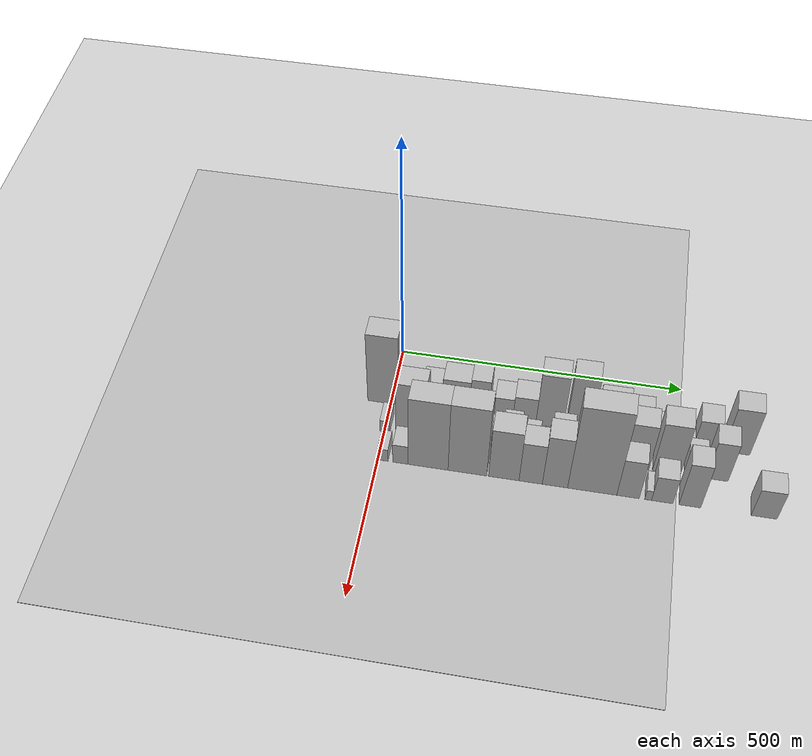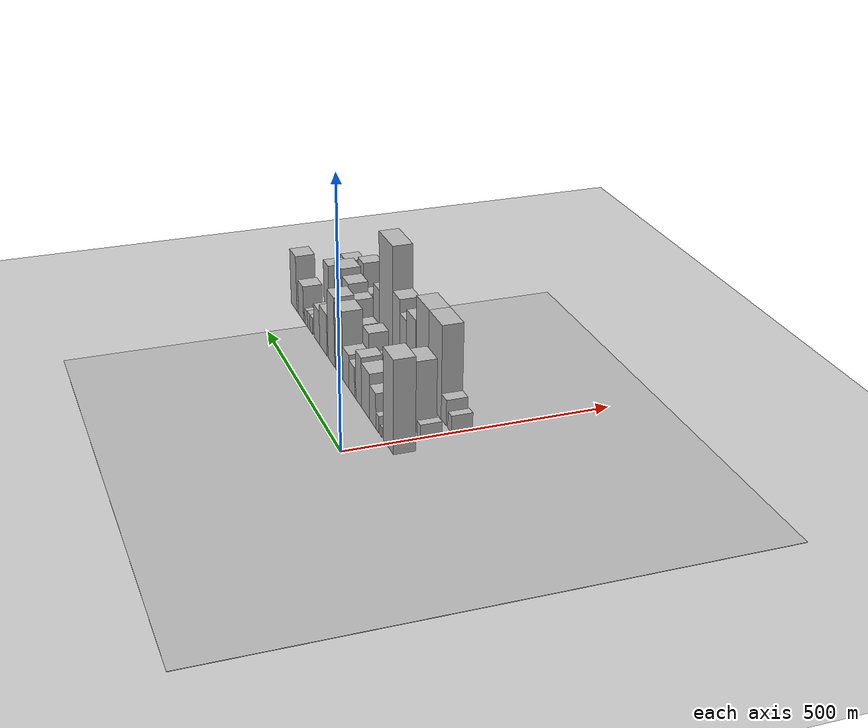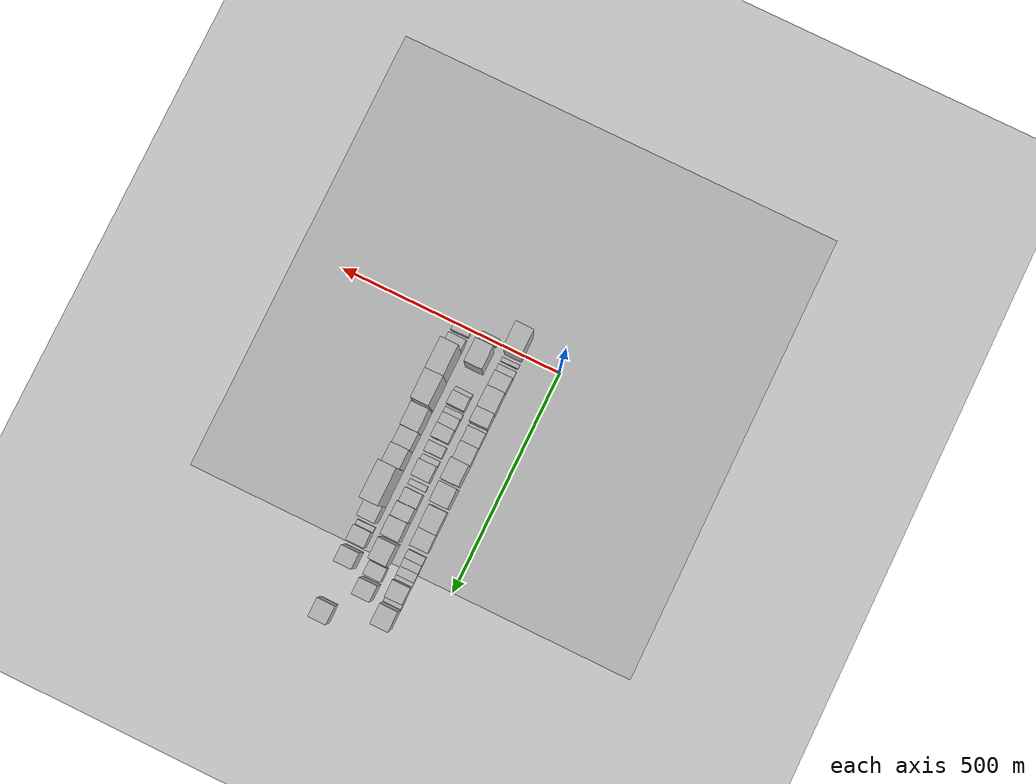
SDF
<sdf version="1.6">
 <world name="default">
  <include><name>ground_plane_1</name><uri>model://HANNAS_ground_plane</uri></include>
  <include>
   <name>ground_plane_2</name>
   <uri>model://HANNAS_ground_plane</uri>
   <pose>100 0 0  0 0 0</pose>
  </include>
  <model name="building_16">
   <static>1</static>
   <pose>100.0000 -13.0072 0 0.000000 0.000000 0.000000</pose>
   <link name="link">
    <pose>0 0 90.00 0 0 0</pose>
    <collision name="collision"><geometry><box><size>40.0000 54.8522 180.0000</size></box></geometry></collision>
    <visual name="visual">
     <cast_shadows>0</cast_shadows>
     <geometry><box><size>40.0000 54.8522 180.0000</size></box></geometry>
     <material>
      <script>
       <uri>model://HANNAS_wall/materials/scripts</uri>
       <uri>model://HANNAS_wall/materials/textures</uri>
       <name>vrc/HANNAS_wall</name>
      </script>
     </material>
    </visual>
   </link>
  </model>
  <model name="building_17">
   <static>1</static>
   <pose>100.0000 26.8543 0 0.000000 0.000000 0.000000</pose>
   <link name="link">
    <pose>0 0 10.50 0 0 0</pose>
    <collision name="collision"><geometry><box><size>40.0000 8.8710 21.0000</size></box></geometry></collision>
    <visual name="visual">
     <cast_shadows>0</cast_shadows>
     <geometry><box><size>40.0000 8.8710 21.0000</size></box></geometry>
     <material>
      <script>
       <uri>model://HANNAS_wall/materials/scripts</uri>
       <uri>model://HANNAS_wall/materials/textures</uri>
       <name>vrc/HANNAS_wall</name>
      </script>
     </material>
    </visual>
   </link>
  </model>
  <model name="building_18">
   <static>1</static>
   <pose>100.0000 47.9079 0 0.000000 0.000000 0.000000</pose>
   <link name="link">
    <pose>0 0 16.50 0 0 0</pose>
    <collision name="collision"><geometry><box><size>40.0000 17.2362 33.0000</size></box></geometry></collision>
    <visual name="visual">
     <cast_shadows>0</cast_shadows>
     <geometry><box><size>40.0000 17.2362 33.0000</size></box></geometry>
     <material>
      <script>
       <uri>model://HANNAS_wall/materials/scripts</uri>
       <uri>model://HANNAS_wall/materials/textures</uri>
       <name>vrc/HANNAS_wall</name>
      </script>
     </material>
    </visual>
   </link>
  </model>
  <model name="building_19">
   <static>1</static>
   <pose>100.0000 74.0982 0 0.000000 0.000000 0.000000</pose>
   <link name="link">
    <pose>0 0 34.50 0 0 0</pose>
    <collision name="collision"><geometry><box><size>40.0000 35.1444 69.0000</size></box></geometry></collision>
    <visual name="visual">
     <cast_shadows>0</cast_shadows>
     <geometry><box><size>40.0000 35.1444 69.0000</size></box></geometry>
     <material>
      <script>
       <uri>model://HANNAS_wall/materials/scripts</uri>
       <uri>model://HANNAS_wall/materials/textures</uri>
       <name>vrc/HANNAS_wall</name>
      </script>
     </material>
    </visual>
   </link>
  </model>
  <model name="building_20">
   <static>1</static>
   <pose>100.0000 115.5759 0 0.000000 0.000000 0.000000</pose>
   <link name="link">
    <pose>0 0 45.00 0 0 0</pose>
    <collision name="collision"><geometry><box><size>40.0000 47.8111 90.0000</size></box></geometry></collision>
    <visual name="visual">
     <cast_shadows>0</cast_shadows>
     <geometry><box><size>40.0000 47.8111 90.0000</size></box></geometry>
     <material>
      <script>
       <uri>model://HANNAS_wall/materials/scripts</uri>
       <uri>model://HANNAS_wall/materials/textures</uri>
       <name>vrc/HANNAS_wall</name>
      </script>
     </material>
    </visual>
   </link>
  </model>
  <model name="building_21">
   <static>1</static>
   <pose>100.0000 156.3765 0 0.000000 0.000000 0.000000</pose>
   <link name="link">
    <pose>0 0 49.50 0 0 0</pose>
    <collision name="collision"><geometry><box><size>40.0000 33.7900 99.0000</size></box></geometry></collision>
    <visual name="visual">
     <cast_shadows>0</cast_shadows>
     <geometry><box><size>40.0000 33.7900 99.0000</size></box></geometry>
     <material>
      <script>
       <uri>model://HANNAS_wall/materials/scripts</uri>
       <uri>model://HANNAS_wall/materials/textures</uri>
       <name>vrc/HANNAS_wall</name>
      </script>
     </material>
    </visual>
   </link>
  </model>
  <model name="building_22">
   <static>1</static>
   <pose>100.0000 177.1312 0 0.000000 0.000000 0.000000</pose>
   <link name="link">
    <pose>0 0 9.00 0 0 0</pose>
    <collision name="collision"><geometry><box><size>40.0000 7.7195 18.0000</size></box></geometry></collision>
    <visual name="visual">
     <cast_shadows>0</cast_shadows>
     <geometry><box><size>40.0000 7.7195 18.0000</size></box></geometry>
     <material>
      <script>
       <uri>model://HANNAS_wall/materials/scripts</uri>
       <uri>model://HANNAS_wall/materials/textures</uri>
       <name>vrc/HANNAS_wall</name>
      </script>
     </material>
    </visual>
   </link>
  </model>
  <model name="building_23">
   <static>1</static>
   <pose>100.0000 198.0240 0 0.000000 0.000000 0.000000</pose>
   <link name="link">
    <pose>0 0 30.00 0 0 0</pose>
    <collision name="collision"><geometry><box><size>40.0000 34.0659 60.0000</size></box></geometry></collision>
    <visual name="visual">
     <cast_shadows>0</cast_shadows>
     <geometry><box><size>40.0000 34.0659 60.0000</size></box></geometry>
     <material>
      <script>
       <uri>model://HANNAS_wall/materials/scripts</uri>
       <uri>model://HANNAS_wall/materials/textures</uri>
       <name>vrc/HANNAS_wall</name>
      </script>
     </material>
    </visual>
   </link>
  </model>
  <model name="building_24">
   <static>1</static>
   <pose>100.0000 234.9716 0 0.000000 0.000000 0.000000</pose>
   <link name="link">
    <pose>0 0 34.50 0 0 0</pose>
    <collision name="collision"><geometry><box><size>40.0000 39.8295 69.0000</size></box></geometry></collision>
    <visual name="visual">
     <cast_shadows>0</cast_shadows>
     <geometry><box><size>40.0000 39.8295 69.0000</size></box></geometry>
     <material>
      <script>
       <uri>model://HANNAS_wall/materials/scripts</uri>
       <uri>model://HANNAS_wall/materials/textures</uri>
       <name>vrc/HANNAS_wall</name>
      </script>
     </material>
    </visual>
   </link>
  </model>
  <model name="building_25">
   <static>1</static>
   <pose>100.0000 278.4877 0 0.000000 0.000000 0.000000</pose>
   <link name="link">
    <pose>0 0 69.00 0 0 0</pose>
    <collision name="collision"><geometry><box><size>40.0000 47.2026 138.0000</size></box></geometry></collision>
    <visual name="visual">
     <cast_shadows>0</cast_shadows>
     <geometry><box><size>40.0000 47.2026 138.0000</size></box></geometry>
     <material>
      <script>
       <uri>model://HANNAS_wall/materials/scripts</uri>
       <uri>model://HANNAS_wall/materials/textures</uri>
       <name>vrc/HANNAS_wall</name>
      </script>
     </material>
    </visual>
   </link>
  </model>
  <model name="building_26">
   <static>1</static>
   <pose>100.0000 329.0434 0 0.000000 0.000000 0.000000</pose>
   <link name="link">
    <pose>0 0 72.00 0 0 0</pose>
    <collision name="collision"><geometry><box><size>40.0000 43.9088 144.0000</size></box></geometry></collision>
    <visual name="visual">
     <cast_shadows>0</cast_shadows>
     <geometry><box><size>40.0000 43.9088 144.0000</size></box></geometry>
     <material>
      <script>
       <uri>model://HANNAS_wall/materials/scripts</uri>
       <uri>model://HANNAS_wall/materials/textures</uri>
       <name>vrc/HANNAS_wall</name>
      </script>
     </material>
    </visual>
   </link>
  </model>
  <model name="building_27">
   <static>1</static>
   <pose>100.0000 383.1958 0 0.000000 0.000000 0.000000</pose>
   <link name="link">
    <pose>0 0 43.50 0 0 0</pose>
    <collision name="collision"><geometry><box><size>40.0000 50.3961 87.0000</size></box></geometry></collision>
    <visual name="visual">
     <cast_shadows>0</cast_shadows>
     <geometry><box><size>40.0000 50.3961 87.0000</size></box></geometry>
     <material>
      <script>
       <uri>model://HANNAS_wall/materials/scripts</uri>
       <uri>model://HANNAS_wall/materials/textures</uri>
       <name>vrc/HANNAS_wall</name>
      </script>
     </material>
    </visual>
   </link>
  </model>
  <model name="building_28">
   <static>1</static>
   <pose>100.0000 428.4094 0 0.000000 0.000000 0.000000</pose>
   <link name="link">
    <pose>0 0 36.00 0 0 0</pose>
    <collision name="collision"><geometry><box><size>40.0000 40.0310 72.0000</size></box></geometry></collision>
    <visual name="visual">
     <cast_shadows>0</cast_shadows>
     <geometry><box><size>40.0000 40.0310 72.0000</size></box></geometry>
     <material>
      <script>
       <uri>model://HANNAS_wall/materials/scripts</uri>
       <uri>model://HANNAS_wall/materials/textures</uri>
       <name>vrc/HANNAS_wall</name>
      </script>
     </material>
    </visual>
   </link>
  </model>
  <model name="building_29">
   <static>1</static>
   <pose>100.0000 467.8048 0 0.000000 0.000000 0.000000</pose>
   <link name="link">
    <pose>0 0 18.00 0 0 0</pose>
    <collision name="collision"><geometry><box><size>40.0000 18.7598 36.0000</size></box></geometry></collision>
    <visual name="visual">
     <cast_shadows>0</cast_shadows>
     <geometry><box><size>40.0000 18.7598 36.0000</size></box></geometry>
     <material>
      <script>
       <uri>model://HANNAS_wall/materials/scripts</uri>
       <uri>model://HANNAS_wall/materials/textures</uri>
       <name>vrc/HANNAS_wall</name>
      </script>
     </material>
    </visual>
   </link>
  </model>
  <model name="building_30">
   <static>1</static>
   <pose>100.0000 486.4014 0 0.000000 0.000000 0.000000</pose>
   <link name="link">
    <pose>0 0 18.00 0 0 0</pose>
    <collision name="collision"><geometry><box><size>40.0000 18.4333 36.0000</size></box></geometry></collision>
    <visual name="visual">
     <cast_shadows>0</cast_shadows>
     <geometry><box><size>40.0000 18.4333 36.0000</size></box></geometry>
     <material>
      <script>
       <uri>model://HANNAS_wall/materials/scripts</uri>
       <uri>model://HANNAS_wall/materials/textures</uri>
       <name>vrc/HANNAS_wall</name>
      </script>
     </material>
    </visual>
   </link>
  </model>
  <model name="building_31">
   <static>1</static>
   <pose>100.0000 505.3228 0 0.000000 0.000000 0.000000</pose>
   <link name="link">
    <pose>0 0 16.50 0 0 0</pose>
    <collision name="collision"><geometry><box><size>40.0000 19.4096 33.0000</size></box></geometry></collision>
    <visual name="visual">
     <cast_shadows>0</cast_shadows>
     <geometry><box><size>40.0000 19.4096 33.0000</size></box></geometry>
     <material>
      <script>
       <uri>model://HANNAS_wall/materials/scripts</uri>
       <uri>model://HANNAS_wall/materials/textures</uri>
       <name>vrc/HANNAS_wall</name>
      </script>
     </material>
    </visual>
   </link>
  </model>
  <model name="building_32">
   <static>1</static>
   <pose>100.0000 519.8692 0 0.000000 0.000000 0.000000</pose>
   <link name="link">
    <pose>0 0 10.50 0 0 0</pose>
    <collision name="collision"><geometry><box><size>40.0000 9.6833 21.0000</size></box></geometry></collision>
    <visual name="visual">
     <cast_shadows>0</cast_shadows>
     <geometry><box><size>40.0000 9.6833 21.0000</size></box></geometry>
     <material>
      <script>
       <uri>model://HANNAS_wall/materials/scripts</uri>
       <uri>model://HANNAS_wall/materials/textures</uri>
       <name>vrc/HANNAS_wall</name>
      </script>
     </material>
    </visual>
   </link>
  </model>
  <model name="building_33">
   <static>1</static>
   <pose>100.0000 543.5015 0 0.000000 0.000000 0.000000</pose>
   <link name="link">
    <pose>0 0 37.50 0 0 0</pose>
    <collision name="collision"><geometry><box><size>40.0000 37.5813 75.0000</size></box></geometry></collision>
    <visual name="visual">
     <cast_shadows>0</cast_shadows>
     <geometry><box><size>40.0000 37.5813 75.0000</size></box></geometry>
     <material>
      <script>
       <uri>model://HANNAS_wall/materials/scripts</uri>
       <uri>model://HANNAS_wall/materials/textures</uri>
       <name>vrc/HANNAS_wall</name>
      </script>
     </material>
    </visual>
   </link>
  </model>
  <model name="building_34">
   <static>1</static>
   <pose>100.0000 568.5206 0 0.000000 0.000000 0.000000</pose>
   <link name="link">
    <pose>0 0 13.50 0 0 0</pose>
    <collision name="collision"><geometry><box><size>40.0000 12.4568 27.0000</size></box></geometry></collision>
    <visual name="visual">
     <cast_shadows>0</cast_shadows>
     <geometry><box><size>40.0000 12.4568 27.0000</size></box></geometry>
     <material>
      <script>
       <uri>model://HANNAS_wall/materials/scripts</uri>
       <uri>model://HANNAS_wall/materials/textures</uri>
       <name>vrc/HANNAS_wall</name>
      </script>
     </material>
    </visual>
   </link>
  </model>
  <model name="building_35">
   <static>1</static>
   <pose>100.0000 596.9426 0 0.000000 0.000000 0.000000</pose>
   <link name="link">
    <pose>0 0 60.00 0 0 0</pose>
    <collision name="collision"><geometry><box><size>40.0000 44.3872 120.0000</size></box></geometry></collision>
    <visual name="visual">
     <cast_shadows>0</cast_shadows>
     <geometry><box><size>40.0000 44.3872 120.0000</size></box></geometry>
     <material>
      <script>
       <uri>model://HANNAS_wall/materials/scripts</uri>
       <uri>model://HANNAS_wall/materials/textures</uri>
       <name>vrc/HANNAS_wall</name>
      </script>
     </material>
    </visual>
   </link>
  </model>
  <model name="building_52">
   <static>1</static>
   <pose>160.0000 1.5211 0 0.000000 0.000000 0.000000</pose>
   <link name="link">
    <pose>0 0 15.00 0 0 0</pose>
    <collision name="collision"><geometry><box><size>40.0000 17.5326 30.0000</size></box></geometry></collision>
    <visual name="visual">
     <cast_shadows>0</cast_shadows>
     <geometry><box><size>40.0000 17.5326 30.0000</size></box></geometry>
     <material>
      <script>
       <uri>model://HANNAS_wall/materials/scripts</uri>
       <uri>model://HANNAS_wall/materials/textures</uri>
       <name>vrc/HANNAS_wall</name>
      </script>
     </material>
    </visual>
   </link>
  </model>
  <model name="building_53">
   <static>1</static>
   <pose>160.0000 46.5620 0 0.000000 0.000000 0.000000</pose>
   <link name="link">
    <pose>0 0 69.00 0 0 0</pose>
    <collision name="collision"><geometry><box><size>40.0000 52.5492 138.0000</size></box></geometry></collision>
    <visual name="visual">
     <cast_shadows>0</cast_shadows>
     <geometry><box><size>40.0000 52.5492 138.0000</size></box></geometry>
     <material>
      <script>
       <uri>model://HANNAS_wall/materials/scripts</uri>
       <uri>model://HANNAS_wall/materials/textures</uri>
       <name>vrc/HANNAS_wall</name>
      </script>
     </material>
    </visual>
   </link>
  </model>
  <model name="building_54">
   <static>1</static>
   <pose>160.0000 124.0687 0 0.000000 0.000000 0.000000</pose>
   <link name="link">
    <pose>0 0 12.00 0 0 0</pose>
    <collision name="collision"><geometry><box><size>40.0000 10.8214 24.0000</size></box></geometry></collision>
    <visual name="visual">
     <cast_shadows>0</cast_shadows>
     <geometry><box><size>40.0000 10.8214 24.0000</size></box></geometry>
     <material>
      <script>
       <uri>model://HANNAS_wall/materials/scripts</uri>
       <uri>model://HANNAS_wall/materials/textures</uri>
       <name>vrc/HANNAS_wall</name>
      </script>
     </material>
    </visual>
   </link>
  </model>
  <model name="building_55">
   <static>1</static>
   <pose>160.0000 144.5876 0 0.000000 0.000000 0.000000</pose>
   <link name="link">
    <pose>0 0 30.00 0 0 0</pose>
    <collision name="collision"><geometry><box><size>40.0000 30.2163 60.0000</size></box></geometry></collision>
    <visual name="visual">
     <cast_shadows>0</cast_shadows>
     <geometry><box><size>40.0000 30.2163 60.0000</size></box></geometry>
     <material>
      <script>
       <uri>model://HANNAS_wall/materials/scripts</uri>
       <uri>model://HANNAS_wall/materials/textures</uri>
       <name>vrc/HANNAS_wall</name>
      </script>
     </material>
    </visual>
   </link>
  </model>
  <model name="building_56">
   <static>1</static>
   <pose>160.0000 171.0431 0 0.000000 0.000000 0.000000</pose>
   <link name="link">
    <pose>0 0 13.50 0 0 0</pose>
    <collision name="collision"><geometry><box><size>40.0000 12.6948 27.0000</size></box></geometry></collision>
    <visual name="visual">
     <cast_shadows>0</cast_shadows>
     <geometry><box><size>40.0000 12.6948 27.0000</size></box></geometry>
     <material>
      <script>
       <uri>model://HANNAS_wall/materials/scripts</uri>
       <uri>model://HANNAS_wall/materials/textures</uri>
       <name>vrc/HANNAS_wall</name>
      </script>
     </material>
    </visual>
   </link>
  </model>
  <model name="building_57">
   <static>1</static>
   <pose>160.0000 189.9268 0 0.000000 0.000000 0.000000</pose>
   <link name="link">
    <pose>0 0 21.00 0 0 0</pose>
    <collision name="collision"><geometry><box><size>40.0000 25.0726 42.0000</size></box></geometry></collision>
    <visual name="visual">
     <cast_shadows>0</cast_shadows>
     <geometry><box><size>40.0000 25.0726 42.0000</size></box></geometry>
     <material>
      <script>
       <uri>model://HANNAS_wall/materials/scripts</uri>
       <uri>model://HANNAS_wall/materials/textures</uri>
       <name>vrc/HANNAS_wall</name>
      </script>
     </material>
    </visual>
   </link>
  </model>
  <model name="building_58">
   <static>1</static>
   <pose>160.0000 217.8167 0 0.000000 0.000000 0.000000</pose>
   <link name="link">
    <pose>0 0 30.00 0 0 0</pose>
    <collision name="collision"><geometry><box><size>40.0000 30.7073 60.0000</size></box></geometry></collision>
    <visual name="visual">
     <cast_shadows>0</cast_shadows>
     <geometry><box><size>40.0000 30.7073 60.0000</size></box></geometry>
     <material>
      <script>
       <uri>model://HANNAS_wall/materials/scripts</uri>
       <uri>model://HANNAS_wall/materials/textures</uri>
       <name>vrc/HANNAS_wall</name>
      </script>
     </material>
    </visual>
   </link>
  </model>
  <model name="building_59">
   <static>1</static>
   <pose>160.0000 253.3060 0 0.000000 0.000000 0.000000</pose>
   <link name="link">
    <pose>0 0 21.00 0 0 0</pose>
    <collision name="collision"><geometry><box><size>40.0000 24.2714 42.0000</size></box></geometry></collision>
    <visual name="visual">
     <cast_shadows>0</cast_shadows>
     <geometry><box><size>40.0000 24.2714 42.0000</size></box></geometry>
     <material>
      <script>
       <uri>model://HANNAS_wall/materials/scripts</uri>
       <uri>model://HANNAS_wall/materials/textures</uri>
       <name>vrc/HANNAS_wall</name>
      </script>
     </material>
    </visual>
   </link>
  </model>
  <model name="building_60">
   <static>1</static>
   <pose>160.0000 277.8568 0 0.000000 0.000000 0.000000</pose>
   <link name="link">
    <pose>0 0 13.50 0 0 0</pose>
    <collision name="collision"><geometry><box><size>40.0000 12.8302 27.0000</size></box></geometry></collision>
    <visual name="visual">
     <cast_shadows>0</cast_shadows>
     <geometry><box><size>40.0000 12.8302 27.0000</size></box></geometry>
     <material>
      <script>
       <uri>model://HANNAS_wall/materials/scripts</uri>
       <uri>model://HANNAS_wall/materials/textures</uri>
       <name>vrc/HANNAS_wall</name>
      </script>
     </material>
    </visual>
   </link>
  </model>
  <model name="building_61">
   <static>1</static>
   <pose>160.0000 302.6830 0 0.000000 0.000000 0.000000</pose>
   <link name="link">
    <pose>0 0 36.00 0 0 0</pose>
    <collision name="collision"><geometry><box><size>40.0000 36.8223 72.0000</size></box></geometry></collision>
    <visual name="visual">
     <cast_shadows>0</cast_shadows>
     <geometry><box><size>40.0000 36.8223 72.0000</size></box></geometry>
     <material>
      <script>
       <uri>model://HANNAS_wall/materials/scripts</uri>
       <uri>model://HANNAS_wall/materials/textures</uri>
       <name>vrc/HANNAS_wall</name>
      </script>
     </material>
    </visual>
   </link>
  </model>
  <model name="building_62">
   <static>1</static>
   <pose>160.0000 334.3858 0 0.000000 0.000000 0.000000</pose>
   <link name="link">
    <pose>0 0 13.50 0 0 0</pose>
    <collision name="collision"><geometry><box><size>40.0000 12.5833 27.0000</size></box></geometry></collision>
    <visual name="visual">
     <cast_shadows>0</cast_shadows>
     <geometry><box><size>40.0000 12.5833 27.0000</size></box></geometry>
     <material>
      <script>
       <uri>model://HANNAS_wall/materials/scripts</uri>
       <uri>model://HANNAS_wall/materials/textures</uri>
       <name>vrc/HANNAS_wall</name>
      </script>
     </material>
    </visual>
   </link>
  </model>
  <model name="building_63">
   <static>1</static>
   <pose>160.0000 363.4555 0 0.000000 0.000000 0.000000</pose>
   <link name="link">
    <pose>0 0 30.00 0 0 0</pose>
    <collision name="collision"><geometry><box><size>40.0000 31.5562 60.0000</size></box></geometry></collision>
    <visual name="visual">
     <cast_shadows>0</cast_shadows>
     <geometry><box><size>40.0000 31.5562 60.0000</size></box></geometry>
     <material>
      <script>
       <uri>model://HANNAS_wall/materials/scripts</uri>
       <uri>model://HANNAS_wall/materials/textures</uri>
       <name>vrc/HANNAS_wall</name>
      </script>
     </material>
    </visual>
   </link>
  </model>
  <model name="building_64">
   <static>1</static>
   <pose>160.0000 394.9360 0 0.000000 0.000000 0.000000</pose>
   <link name="link">
    <pose>0 0 49.50 0 0 0</pose>
    <collision name="collision"><geometry><box><size>40.0000 31.4048 99.0000</size></box></geometry></collision>
    <visual name="visual">
     <cast_shadows>0</cast_shadows>
     <geometry><box><size>40.0000 31.4048 99.0000</size></box></geometry>
     <material>
      <script>
       <uri>model://HANNAS_wall/materials/scripts</uri>
       <uri>model://HANNAS_wall/materials/textures</uri>
       <name>vrc/HANNAS_wall</name>
      </script>
     </material>
    </visual>
   </link>
  </model>
  <model name="building_65">
   <static>1</static>
   <pose>160.0000 431.5729 0 0.000000 0.000000 0.000000</pose>
   <link name="link">
    <pose>0 0 60.00 0 0 0</pose>
    <collision name="collision"><geometry><box><size>40.0000 41.8689 120.0000</size></box></geometry></collision>
    <visual name="visual">
     <cast_shadows>0</cast_shadows>
     <geometry><box><size>40.0000 41.8689 120.0000</size></box></geometry>
     <material>
      <script>
       <uri>model://HANNAS_wall/materials/scripts</uri>
       <uri>model://HANNAS_wall/materials/textures</uri>
       <name>vrc/HANNAS_wall</name>
      </script>
     </material>
    </visual>
   </link>
  </model>
  <model name="building_66">
   <static>1</static>
   <pose>160.0000 481.8660 0 0.000000 0.000000 0.000000</pose>
   <link name="link">
    <pose>0 0 66.00 0 0 0</pose>
    <collision name="collision"><geometry><box><size>40.0000 46.7174 132.0000</size></box></geometry></collision>
    <visual name="visual">
     <cast_shadows>0</cast_shadows>
     <geometry><box><size>40.0000 46.7174 132.0000</size></box></geometry>
     <material>
      <script>
       <uri>model://HANNAS_wall/materials/scripts</uri>
       <uri>model://HANNAS_wall/materials/textures</uri>
       <name>vrc/HANNAS_wall</name>
      </script>
     </material>
    </visual>
   </link>
  </model>
  <model name="building_67">
   <static>1</static>
   <pose>160.0000 526.6064 0 0.000000 0.000000 0.000000</pose>
   <link name="link">
    <pose>0 0 27.00 0 0 0</pose>
    <collision name="collision"><geometry><box><size>40.0000 30.7634 54.0000</size></box></geometry></collision>
    <visual name="visual">
     <cast_shadows>0</cast_shadows>
     <geometry><box><size>40.0000 30.7634 54.0000</size></box></geometry>
     <material>
      <script>
       <uri>model://HANNAS_wall/materials/scripts</uri>
       <uri>model://HANNAS_wall/materials/textures</uri>
       <name>vrc/HANNAS_wall</name>
      </script>
     </material>
    </visual>
   </link>
  </model>
  <model name="building_68">
   <static>1</static>
   <pose>160.0000 565.8970 0 0.000000 0.000000 0.000000</pose>
   <link name="link">
    <pose>0 0 51.00 0 0 0</pose>
    <collision name="collision"><geometry><box><size>40.0000 35.8179 102.0000</size></box></geometry></collision>
    <visual name="visual">
     <cast_shadows>0</cast_shadows>
     <geometry><box><size>40.0000 35.8179 102.0000</size></box></geometry>
     <material>
      <script>
       <uri>model://HANNAS_wall/materials/scripts</uri>
       <uri>model://HANNAS_wall/materials/textures</uri>
       <name>vrc/HANNAS_wall</name>
      </script>
     </material>
    </visual>
   </link>
  </model>
  <model name="building_88">
   <static>1</static>
   <pose>220.0000 9.4413 0 0.000000 0.000000 0.000000</pose>
   <link name="link">
    <pose>0 0 16.50 0 0 0</pose>
    <collision name="collision"><geometry><box><size>40.0000 17.5889 33.0000</size></box></geometry></collision>
    <visual name="visual">
     <cast_shadows>0</cast_shadows>
     <geometry><box><size>40.0000 17.5889 33.0000</size></box></geometry>
     <material>
      <script>
       <uri>model://HANNAS_wall/materials/scripts</uri>
       <uri>model://HANNAS_wall/materials/textures</uri>
       <name>vrc/HANNAS_wall</name>
      </script>
     </material>
    </visual>
   </link>
  </model>
  <model name="building_89">
   <static>1</static>
   <pose>220.0000 39.3059 0 0.000000 0.000000 0.000000</pose>
   <link name="link">
    <pose>0 0 25.50 0 0 0</pose>
    <collision name="collision"><geometry><box><size>40.0000 26.1405 51.0000</size></box></geometry></collision>
    <visual name="visual">
     <cast_shadows>0</cast_shadows>
     <geometry><box><size>40.0000 26.1405 51.0000</size></box></geometry>
     <material>
      <script>
       <uri>model://HANNAS_wall/materials/scripts</uri>
       <uri>model://HANNAS_wall/materials/textures</uri>
       <name>vrc/HANNAS_wall</name>
      </script>
     </material>
    </visual>
   </link>
  </model>
  <model name="building_90">
   <static>1</static>
   <pose>220.0000 86.4786 0 0.000000 0.000000 0.000000</pose>
   <link name="link">
    <pose>0 0 91.50 0 0 0</pose>
    <collision name="collision"><geometry><box><size>40.0000 68.2048 183.0000</size></box></geometry></collision>
    <visual name="visual">
     <cast_shadows>0</cast_shadows>
     <geometry><box><size>40.0000 68.2048 183.0000</size></box></geometry>
     <material>
      <script>
       <uri>model://HANNAS_wall/materials/scripts</uri>
       <uri>model://HANNAS_wall/materials/textures</uri>
       <name>vrc/HANNAS_wall</name>
      </script>
     </material>
    </visual>
   </link>
  </model>
  <model name="building_91">
   <static>1</static>
   <pose>220.0000 153.3682 0 0.000000 0.000000 0.000000</pose>
   <link name="link">
    <pose>0 0 91.50 0 0 0</pose>
    <collision name="collision"><geometry><box><size>40.0000 65.5744 183.0000</size></box></geometry></collision>
    <visual name="visual">
     <cast_shadows>0</cast_shadows>
     <geometry><box><size>40.0000 65.5744 183.0000</size></box></geometry>
     <material>
      <script>
       <uri>model://HANNAS_wall/materials/scripts</uri>
       <uri>model://HANNAS_wall/materials/textures</uri>
       <name>vrc/HANNAS_wall</name>
      </script>
     </material>
    </visual>
   </link>
  </model>
  <model name="building_92">
   <static>1</static>
   <pose>220.0000 214.8444 0 0.000000 0.000000 0.000000</pose>
   <link name="link">
    <pose>0 0 66.00 0 0 0</pose>
    <collision name="collision"><geometry><box><size>40.0000 51.3781 132.0000</size></box></geometry></collision>
    <visual name="visual">
     <cast_shadows>0</cast_shadows>
     <geometry><box><size>40.0000 51.3781 132.0000</size></box></geometry>
     <material>
      <script>
       <uri>model://HANNAS_wall/materials/scripts</uri>
       <uri>model://HANNAS_wall/materials/textures</uri>
       <name>vrc/HANNAS_wall</name>
      </script>
     </material>
    </visual>
   </link>
  </model>
  <model name="building_93">
   <static>1</static>
   <pose>220.0000 259.9974 0 0.000000 0.000000 0.000000</pose>
   <link name="link">
    <pose>0 0 54.00 0 0 0</pose>
    <collision name="collision"><geometry><box><size>40.0000 38.9278 108.0000</size></box></geometry></collision>
    <visual name="visual">
     <cast_shadows>0</cast_shadows>
     <geometry><box><size>40.0000 38.9278 108.0000</size></box></geometry>
     <material>
      <script>
       <uri>model://HANNAS_wall/materials/scripts</uri>
       <uri>model://HANNAS_wall/materials/textures</uri>
       <name>vrc/HANNAS_wall</name>
      </script>
     </material>
    </visual>
   </link>
  </model>
  <model name="building_94">
   <static>1</static>
   <pose>220.0000 300.4747 0 0.000000 0.000000 0.000000</pose>
   <link name="link">
    <pose>0 0 67.50 0 0 0</pose>
    <collision name="collision"><geometry><box><size>40.0000 42.0270 135.0000</size></box></geometry></collision>
    <visual name="visual">
     <cast_shadows>0</cast_shadows>
     <geometry><box><size>40.0000 42.0270 135.0000</size></box></geometry>
     <material>
      <script>
       <uri>model://HANNAS_wall/materials/scripts</uri>
       <uri>model://HANNAS_wall/materials/textures</uri>
       <name>vrc/HANNAS_wall</name>
      </script>
     </material>
    </visual>
   </link>
  </model>
  <model name="building_95">
   <static>1</static>
   <pose>220.0000 362.2360 0 0.000000 0.000000 0.000000</pose>
   <link name="link">
    <pose>0 0 112.50 0 0 0</pose>
    <collision name="collision"><geometry><box><size>40.0000 81.4955 225.0000</size></box></geometry></collision>
    <visual name="visual">
     <cast_shadows>0</cast_shadows>
     <geometry><box><size>40.0000 81.4955 225.0000</size></box></geometry>
     <material>
      <script>
       <uri>model://HANNAS_wall/materials/scripts</uri>
       <uri>model://HANNAS_wall/materials/textures</uri>
       <name>vrc/HANNAS_wall</name>
      </script>
     </material>
    </visual>
   </link>
  </model>
  <model name="building_96">
   <static>1</static>
   <pose>220.0000 421.5456 0 0.000000 0.000000 0.000000</pose>
   <link name="link">
    <pose>0 0 51.00 0 0 0</pose>
    <collision name="collision"><geometry><box><size>40.0000 37.1237 102.0000</size></box></geometry></collision>
    <visual name="visual">
     <cast_shadows>0</cast_shadows>
     <geometry><box><size>40.0000 37.1237 102.0000</size></box></geometry>
     <material>
      <script>
       <uri>model://HANNAS_wall/materials/scripts</uri>
       <uri>model://HANNAS_wall/materials/textures</uri>
       <name>vrc/HANNAS_wall</name>
      </script>
     </material>
    </visual>
   </link>
  </model>
  <model name="building_97">
   <static>1</static>
   <pose>220.0000 454.6346 0 0.000000 0.000000 0.000000</pose>
   <link name="link">
    <pose>0 0 13.50 0 0 0</pose>
    <collision name="collision"><geometry><box><size>40.0000 11.0542 27.0000</size></box></geometry></collision>
    <visual name="visual">
     <cast_shadows>0</cast_shadows>
     <geometry><box><size>40.0000 11.0542 27.0000</size></box></geometry>
     <material>
      <script>
       <uri>model://HANNAS_wall/materials/scripts</uri>
       <uri>model://HANNAS_wall/materials/textures</uri>
       <name>vrc/HANNAS_wall</name>
      </script>
     </material>
    </visual>
   </link>
  </model>
  <model name="building_98">
   <static>1</static>
   <pose>220.0000 477.5663 0 0.000000 0.000000 0.000000</pose>
   <link name="link">
    <pose>0 0 34.50 0 0 0</pose>
    <collision name="collision"><geometry><box><size>40.0000 34.8091 69.0000</size></box></geometry></collision>
    <visual name="visual">
     <cast_shadows>0</cast_shadows>
     <geometry><box><size>40.0000 34.8091 69.0000</size></box></geometry>
     <material>
      <script>
       <uri>model://HANNAS_wall/materials/scripts</uri>
       <uri>model://HANNAS_wall/materials/textures</uri>
       <name>vrc/HANNAS_wall</name>
      </script>
     </material>
    </visual>
   </link>
  </model>
  <model name="building_99">
   <static>1</static>
   <pose>220.0000 522.7764 0 0.000000 0.000000 0.000000</pose>
   <link name="link">
    <pose>0 0 58.50 0 0 0</pose>
    <collision name="collision"><geometry><box><size>40.0000 35.6112 117.0000</size></box></geometry></collision>
    <visual name="visual">
     <cast_shadows>0</cast_shadows>
     <geometry><box><size>40.0000 35.6112 117.0000</size></box></geometry>
     <material>
      <script>
       <uri>model://HANNAS_wall/materials/scripts</uri>
       <uri>model://HANNAS_wall/materials/textures</uri>
       <name>vrc/HANNAS_wall</name>
      </script>
     </material>
    </visual>
   </link>
  </model>
  <model name="building_100">
   <static>1</static>
   <pose>220.0000 642.9821 0 0.000000 0.000000 0.000000</pose>
   <link name="link">
    <pose>0 0 37.50 0 0 0</pose>
    <collision name="collision"><geometry><box><size>40.0000 41.6001 75.0000</size></box></geometry></collision>
    <visual name="visual">
     <cast_shadows>0</cast_shadows>
     <geometry><box><size>40.0000 41.6001 75.0000</size></box></geometry>
     <material>
      <script>
       <uri>model://HANNAS_wall/materials/scripts</uri>
       <uri>model://HANNAS_wall/materials/textures</uri>
       <name>vrc/HANNAS_wall</name>
      </script>
     </material>
    </visual>
   </link>
  </model>
 </world>
</sdf>
